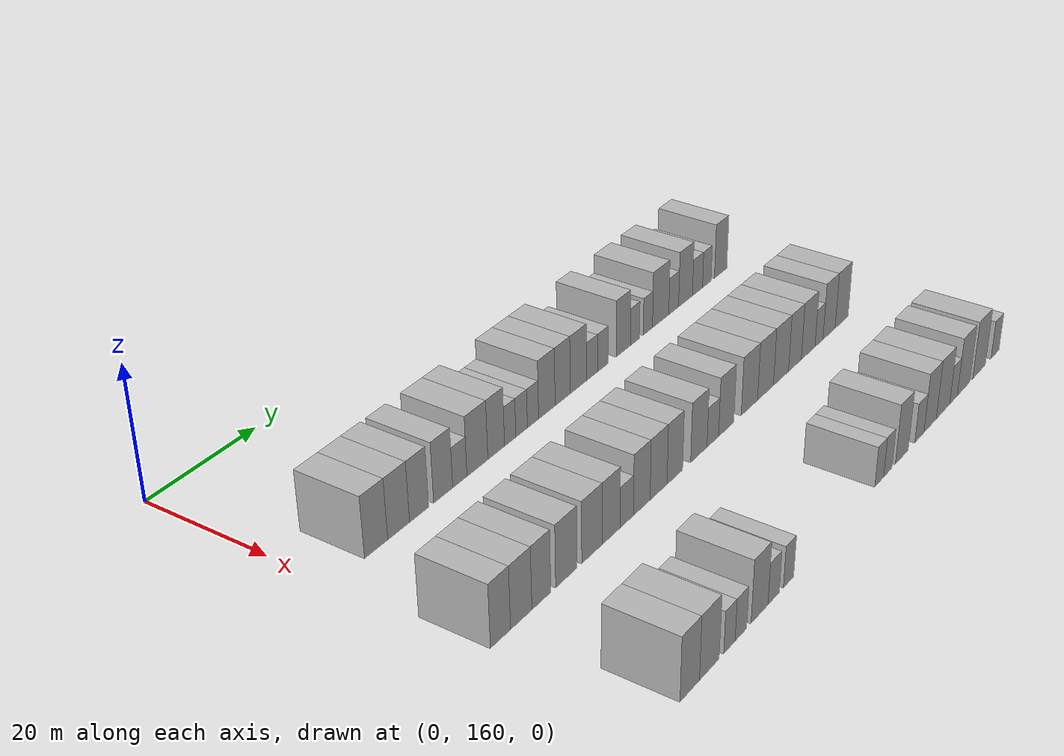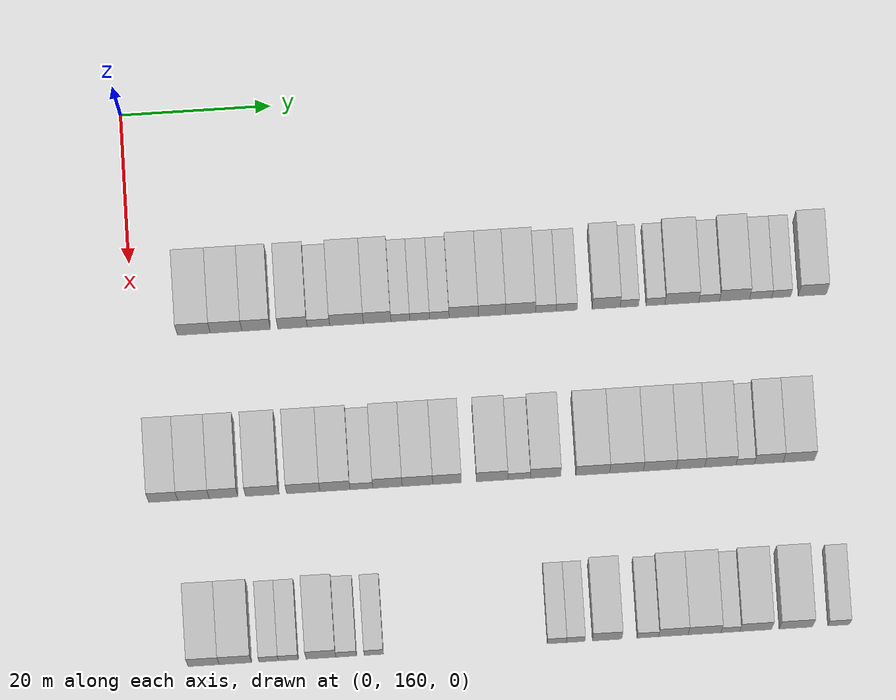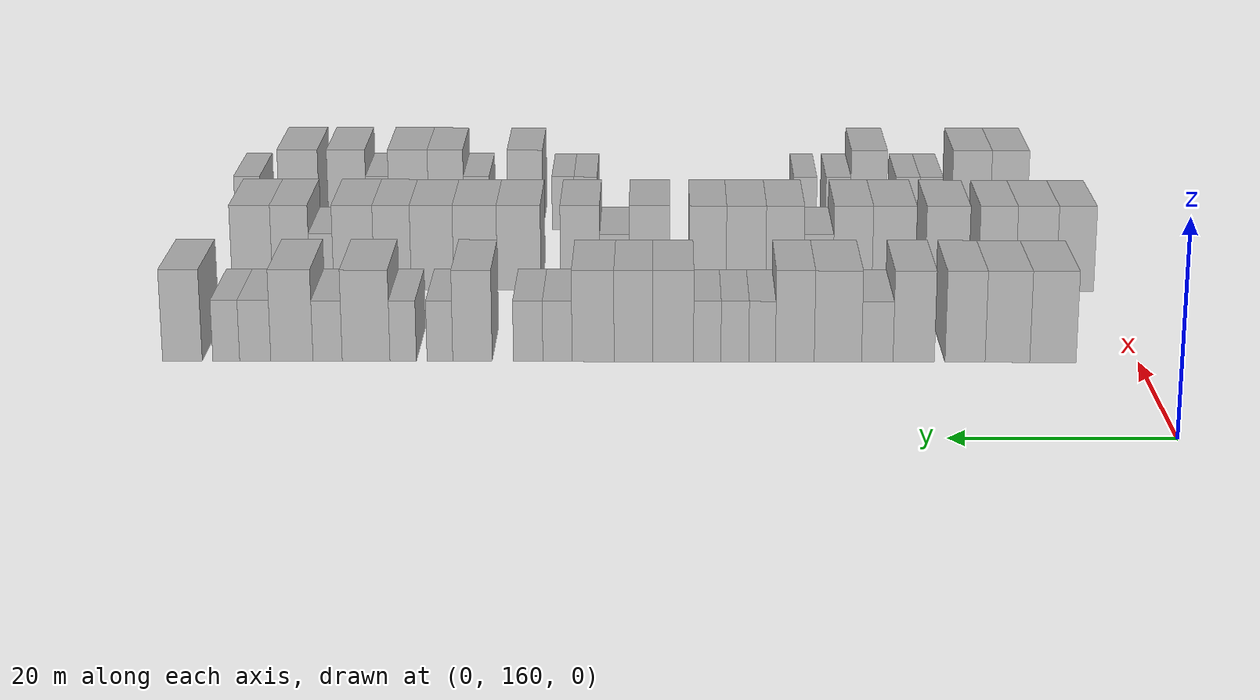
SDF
<sdf version="1.6">
 <world name="default">
  <model name="building_99">
   <static>1</static>
   <pose>25.0000 168.0399 0 0.000000 0.000000 0.000000</pose>
   <link name="link">
    <pose>0 0 4.50 0 0 0</pose>
    <collision name="collision"><geometry><box><size>10.0000 4.3559 9.0000</size></box></geometry></collision>
    <visual name="visual">
     <cast_shadows>0</cast_shadows>
     <geometry><box><size>10.0000 4.3559 9.0000</size></box></geometry>
     <material>
      <script>
       <uri>model://HANNAS_wall/materials/scripts</uri>
       <uri>model://HANNAS_wall/materials/textures</uri>
       <name>vrc/HANNAS_wall</name>
      </script>
     </material>
    </visual>
   </link>
  </model>
  <model name="building_100">
   <static>1</static>
   <pose>25.0000 172.3185 0 0.000000 0.000000 0.000000</pose>
   <link name="link">
    <pose>0 0 4.50 0 0 0</pose>
    <collision name="collision"><geometry><box><size>10.0000 4.2013 9.0000</size></box></geometry></collision>
    <visual name="visual">
     <cast_shadows>0</cast_shadows>
     <geometry><box><size>10.0000 4.2013 9.0000</size></box></geometry>
     <material>
      <script>
       <uri>model://HANNAS_wall/materials/scripts</uri>
       <uri>model://HANNAS_wall/materials/textures</uri>
       <name>vrc/HANNAS_wall</name>
      </script>
     </material>
    </visual>
   </link>
  </model>
  <model name="building_101">
   <static>1</static>
   <pose>25.0000 176.3024 0 0.000000 0.000000 0.000000</pose>
   <link name="link">
    <pose>0 0 4.50 0 0 0</pose>
    <collision name="collision"><geometry><box><size>10.0000 3.7665 9.0000</size></box></geometry></collision>
    <visual name="visual">
     <cast_shadows>0</cast_shadows>
     <geometry><box><size>10.0000 3.7665 9.0000</size></box></geometry>
     <material>
      <script>
       <uri>model://HANNAS_wall/materials/scripts</uri>
       <uri>model://HANNAS_wall/materials/textures</uri>
       <name>vrc/HANNAS_wall</name>
      </script>
     </material>
    </visual>
   </link>
  </model>
  <model name="building_102">
   <static>1</static>
   <pose>25.0000 181.1309 0 0.000000 0.000000 0.000000</pose>
   <link name="link">
    <pose>0 0 4.50 0 0 0</pose>
    <collision name="collision"><geometry><box><size>10.0000 3.8904 9.0000</size></box></geometry></collision>
    <visual name="visual">
     <cast_shadows>0</cast_shadows>
     <geometry><box><size>10.0000 3.8904 9.0000</size></box></geometry>
     <material>
      <script>
       <uri>model://HANNAS_wall/materials/scripts</uri>
       <uri>model://HANNAS_wall/materials/textures</uri>
       <name>vrc/HANNAS_wall</name>
      </script>
     </material>
    </visual>
   </link>
  </model>
  <model name="building_103">
   <static>1</static>
   <pose>25.0000 184.5589 0 0.000000 0.000000 0.000000</pose>
   <link name="link">
    <pose>0 0 3.00 0 0 0</pose>
    <collision name="collision"><geometry><box><size>10.0000 2.9656 6.0000</size></box></geometry></collision>
    <visual name="visual">
     <cast_shadows>0</cast_shadows>
     <geometry><box><size>10.0000 2.9656 6.0000</size></box></geometry>
     <material>
      <script>
       <uri>model://HANNAS_wall/materials/scripts</uri>
       <uri>model://HANNAS_wall/materials/textures</uri>
       <name>vrc/HANNAS_wall</name>
      </script>
     </material>
    </visual>
   </link>
  </model>
  <model name="building_104">
   <static>1</static>
   <pose>25.0000 188.2683 0 0.000000 0.000000 0.000000</pose>
   <link name="link">
    <pose>0 0 4.50 0 0 0</pose>
    <collision name="collision"><geometry><box><size>10.0000 4.4532 9.0000</size></box></geometry></collision>
    <visual name="visual">
     <cast_shadows>0</cast_shadows>
     <geometry><box><size>10.0000 4.4532 9.0000</size></box></geometry>
     <material>
      <script>
       <uri>model://HANNAS_wall/materials/scripts</uri>
       <uri>model://HANNAS_wall/materials/textures</uri>
       <name>vrc/HANNAS_wall</name>
      </script>
     </material>
    </visual>
   </link>
  </model>
  <model name="building_105">
   <static>1</static>
   <pose>25.0000 192.3219 0 0.000000 0.000000 0.000000</pose>
   <link name="link">
    <pose>0 0 4.50 0 0 0</pose>
    <collision name="collision"><geometry><box><size>10.0000 3.6541 9.0000</size></box></geometry></collision>
    <visual name="visual">
     <cast_shadows>0</cast_shadows>
     <geometry><box><size>10.0000 3.6541 9.0000</size></box></geometry>
     <material>
      <script>
       <uri>model://HANNAS_wall/materials/scripts</uri>
       <uri>model://HANNAS_wall/materials/textures</uri>
       <name>vrc/HANNAS_wall</name>
      </script>
     </material>
    </visual>
   </link>
  </model>
  <model name="building_106">
   <static>1</static>
   <pose>25.0000 195.3987 0 0.000000 0.000000 0.000000</pose>
   <link name="link">
    <pose>0 0 3.00 0 0 0</pose>
    <collision name="collision"><geometry><box><size>10.0000 2.4995 6.0000</size></box></geometry></collision>
    <visual name="visual">
     <cast_shadows>0</cast_shadows>
     <geometry><box><size>10.0000 2.4995 6.0000</size></box></geometry>
     <material>
      <script>
       <uri>model://HANNAS_wall/materials/scripts</uri>
       <uri>model://HANNAS_wall/materials/textures</uri>
       <name>vrc/HANNAS_wall</name>
      </script>
     </material>
    </visual>
   </link>
  </model>
  <model name="building_107">
   <static>1</static>
   <pose>25.0000 197.9609 0 0.000000 0.000000 0.000000</pose>
   <link name="link">
    <pose>0 0 3.00 0 0 0</pose>
    <collision name="collision"><geometry><box><size>10.0000 2.6248 6.0000</size></box></geometry></collision>
    <visual name="visual">
     <cast_shadows>0</cast_shadows>
     <geometry><box><size>10.0000 2.6248 6.0000</size></box></geometry>
     <material>
      <script>
       <uri>model://HANNAS_wall/materials/scripts</uri>
       <uri>model://HANNAS_wall/materials/textures</uri>
       <name>vrc/HANNAS_wall</name>
      </script>
     </material>
    </visual>
   </link>
  </model>
  <model name="building_108">
   <static>1</static>
   <pose>25.0000 200.5606 0 0.000000 0.000000 0.000000</pose>
   <link name="link">
    <pose>0 0 3.00 0 0 0</pose>
    <collision name="collision"><geometry><box><size>10.0000 2.5746 6.0000</size></box></geometry></collision>
    <visual name="visual">
     <cast_shadows>0</cast_shadows>
     <geometry><box><size>10.0000 2.5746 6.0000</size></box></geometry>
     <material>
      <script>
       <uri>model://HANNAS_wall/materials/scripts</uri>
       <uri>model://HANNAS_wall/materials/textures</uri>
       <name>vrc/HANNAS_wall</name>
      </script>
     </material>
    </visual>
   </link>
  </model>
  <model name="building_109">
   <static>1</static>
   <pose>25.0000 203.7790 0 0.000000 0.000000 0.000000</pose>
   <link name="link">
    <pose>0 0 4.50 0 0 0</pose>
    <collision name="collision"><geometry><box><size>10.0000 3.8621 9.0000</size></box></geometry></collision>
    <visual name="visual">
     <cast_shadows>0</cast_shadows>
     <geometry><box><size>10.0000 3.8621 9.0000</size></box></geometry>
     <material>
      <script>
       <uri>model://HANNAS_wall/materials/scripts</uri>
       <uri>model://HANNAS_wall/materials/textures</uri>
       <name>vrc/HANNAS_wall</name>
      </script>
     </material>
    </visual>
   </link>
  </model>
  <model name="building_110">
   <static>1</static>
   <pose>25.0000 207.5208 0 0.000000 0.000000 0.000000</pose>
   <link name="link">
    <pose>0 0 4.50 0 0 0</pose>
    <collision name="collision"><geometry><box><size>10.0000 3.6215 9.0000</size></box></geometry></collision>
    <visual name="visual">
     <cast_shadows>0</cast_shadows>
     <geometry><box><size>10.0000 3.6215 9.0000</size></box></geometry>
     <material>
      <script>
       <uri>model://HANNAS_wall/materials/scripts</uri>
       <uri>model://HANNAS_wall/materials/textures</uri>
       <name>vrc/HANNAS_wall</name>
      </script>
     </material>
    </visual>
   </link>
  </model>
  <model name="building_111">
   <static>1</static>
   <pose>25.0000 211.3105 0 0.000000 0.000000 0.000000</pose>
   <link name="link">
    <pose>0 0 4.50 0 0 0</pose>
    <collision name="collision"><geometry><box><size>10.0000 3.9579 9.0000</size></box></geometry></collision>
    <visual name="visual">
     <cast_shadows>0</cast_shadows>
     <geometry><box><size>10.0000 3.9579 9.0000</size></box></geometry>
     <material>
      <script>
       <uri>model://HANNAS_wall/materials/scripts</uri>
       <uri>model://HANNAS_wall/materials/textures</uri>
       <name>vrc/HANNAS_wall</name>
      </script>
     </material>
    </visual>
   </link>
  </model>
  <model name="building_112">
   <static>1</static>
   <pose>25.0000 214.6621 0 0.000000 0.000000 0.000000</pose>
   <link name="link">
    <pose>0 0 3.00 0 0 0</pose>
    <collision name="collision"><geometry><box><size>10.0000 2.7454 6.0000</size></box></geometry></collision>
    <visual name="visual">
     <cast_shadows>0</cast_shadows>
     <geometry><box><size>10.0000 2.7454 6.0000</size></box></geometry>
     <material>
      <script>
       <uri>model://HANNAS_wall/materials/scripts</uri>
       <uri>model://HANNAS_wall/materials/textures</uri>
       <name>vrc/HANNAS_wall</name>
      </script>
     </material>
    </visual>
   </link>
  </model>
  <model name="building_113">
   <static>1</static>
   <pose>25.0000 217.4210 0 0.000000 0.000000 0.000000</pose>
   <link name="link">
    <pose>0 0 3.00 0 0 0</pose>
    <collision name="collision"><geometry><box><size>10.0000 2.7723 6.0000</size></box></geometry></collision>
    <visual name="visual">
     <cast_shadows>0</cast_shadows>
     <geometry><box><size>10.0000 2.7723 6.0000</size></box></geometry>
     <material>
      <script>
       <uri>model://HANNAS_wall/materials/scripts</uri>
       <uri>model://HANNAS_wall/materials/textures</uri>
       <name>vrc/HANNAS_wall</name>
      </script>
     </material>
    </visual>
   </link>
  </model>
  <model name="building_114">
   <static>1</static>
   <pose>25.0000 222.6649 0 0.000000 0.000000 0.000000</pose>
   <link name="link">
    <pose>0 0 4.50 0 0 0</pose>
    <collision name="collision"><geometry><box><size>10.0000 3.7156 9.0000</size></box></geometry></collision>
    <visual name="visual">
     <cast_shadows>0</cast_shadows>
     <geometry><box><size>10.0000 3.7156 9.0000</size></box></geometry>
     <material>
      <script>
       <uri>model://HANNAS_wall/materials/scripts</uri>
       <uri>model://HANNAS_wall/materials/textures</uri>
       <name>vrc/HANNAS_wall</name>
      </script>
     </material>
    </visual>
   </link>
  </model>
  <model name="building_115">
   <static>1</static>
   <pose>25.0000 225.7364 0 0.000000 0.000000 0.000000</pose>
   <link name="link">
    <pose>0 0 3.00 0 0 0</pose>
    <collision name="collision"><geometry><box><size>10.0000 2.4274 6.0000</size></box></geometry></collision>
    <visual name="visual">
     <cast_shadows>0</cast_shadows>
     <geometry><box><size>10.0000 2.4274 6.0000</size></box></geometry>
     <material>
      <script>
       <uri>model://HANNAS_wall/materials/scripts</uri>
       <uri>model://HANNAS_wall/materials/textures</uri>
       <name>vrc/HANNAS_wall</name>
      </script>
     </material>
    </visual>
   </link>
  </model>
  <model name="building_116">
   <static>1</static>
   <pose>25.0000 229.1979 0 0.000000 0.000000 0.000000</pose>
   <link name="link">
    <pose>0 0 3.00 0 0 0</pose>
    <collision name="collision"><geometry><box><size>10.0000 2.4956 6.0000</size></box></geometry></collision>
    <visual name="visual">
     <cast_shadows>0</cast_shadows>
     <geometry><box><size>10.0000 2.4956 6.0000</size></box></geometry>
     <material>
      <script>
       <uri>model://HANNAS_wall/materials/scripts</uri>
       <uri>model://HANNAS_wall/materials/textures</uri>
       <name>vrc/HANNAS_wall</name>
      </script>
     </material>
    </visual>
   </link>
  </model>
  <model name="building_117">
   <static>1</static>
   <pose>25.0000 232.6946 0 0.000000 0.000000 0.000000</pose>
   <link name="link">
    <pose>0 0 4.50 0 0 0</pose>
    <collision name="collision"><geometry><box><size>10.0000 4.4978 9.0000</size></box></geometry></collision>
    <visual name="visual">
     <cast_shadows>0</cast_shadows>
     <geometry><box><size>10.0000 4.4978 9.0000</size></box></geometry>
     <material>
      <script>
       <uri>model://HANNAS_wall/materials/scripts</uri>
       <uri>model://HANNAS_wall/materials/textures</uri>
       <name>vrc/HANNAS_wall</name>
      </script>
     </material>
    </visual>
   </link>
  </model>
  <model name="building_118">
   <static>1</static>
   <pose>25.0000 236.3206 0 0.000000 0.000000 0.000000</pose>
   <link name="link">
    <pose>0 0 3.00 0 0 0</pose>
    <collision name="collision"><geometry><box><size>10.0000 2.7542 6.0000</size></box></geometry></collision>
    <visual name="visual">
     <cast_shadows>0</cast_shadows>
     <geometry><box><size>10.0000 2.7542 6.0000</size></box></geometry>
     <material>
      <script>
       <uri>model://HANNAS_wall/materials/scripts</uri>
       <uri>model://HANNAS_wall/materials/textures</uri>
       <name>vrc/HANNAS_wall</name>
      </script>
     </material>
    </visual>
   </link>
  </model>
  <model name="building_119">
   <static>1</static>
   <pose>25.0000 239.6859 0 0.000000 0.000000 0.000000</pose>
   <link name="link">
    <pose>0 0 4.50 0 0 0</pose>
    <collision name="collision"><geometry><box><size>10.0000 3.9764 9.0000</size></box></geometry></collision>
    <visual name="visual">
     <cast_shadows>0</cast_shadows>
     <geometry><box><size>10.0000 3.9764 9.0000</size></box></geometry>
     <material>
      <script>
       <uri>model://HANNAS_wall/materials/scripts</uri>
       <uri>model://HANNAS_wall/materials/textures</uri>
       <name>vrc/HANNAS_wall</name>
      </script>
     </material>
    </visual>
   </link>
  </model>
  <model name="building_120">
   <static>1</static>
   <pose>25.0000 243.1454 0 0.000000 0.000000 0.000000</pose>
   <link name="link">
    <pose>0 0 3.00 0 0 0</pose>
    <collision name="collision"><geometry><box><size>10.0000 2.9426 6.0000</size></box></geometry></collision>
    <visual name="visual">
     <cast_shadows>0</cast_shadows>
     <geometry><box><size>10.0000 2.9426 6.0000</size></box></geometry>
     <material>
      <script>
       <uri>model://HANNAS_wall/materials/scripts</uri>
       <uri>model://HANNAS_wall/materials/textures</uri>
       <name>vrc/HANNAS_wall</name>
      </script>
     </material>
    </visual>
   </link>
  </model>
  <model name="building_121">
   <static>1</static>
   <pose>25.0000 245.8794 0 0.000000 0.000000 0.000000</pose>
   <link name="link">
    <pose>0 0 3.00 0 0 0</pose>
    <collision name="collision"><geometry><box><size>10.0000 2.5252 6.0000</size></box></geometry></collision>
    <visual name="visual">
     <cast_shadows>0</cast_shadows>
     <geometry><box><size>10.0000 2.5252 6.0000</size></box></geometry>
     <material>
      <script>
       <uri>model://HANNAS_wall/materials/scripts</uri>
       <uri>model://HANNAS_wall/materials/textures</uri>
       <name>vrc/HANNAS_wall</name>
      </script>
     </material>
    </visual>
   </link>
  </model>
  <model name="building_122">
   <static>1</static>
   <pose>25.0000 250.0125 0 0.000000 0.000000 0.000000</pose>
   <link name="link">
    <pose>0 0 4.50 0 0 0</pose>
    <collision name="collision"><geometry><box><size>10.0000 3.7411 9.0000</size></box></geometry></collision>
    <visual name="visual">
     <cast_shadows>0</cast_shadows>
     <geometry><box><size>10.0000 3.7411 9.0000</size></box></geometry>
     <material>
      <script>
       <uri>model://HANNAS_wall/materials/scripts</uri>
       <uri>model://HANNAS_wall/materials/textures</uri>
       <name>vrc/HANNAS_wall</name>
      </script>
     </material>
    </visual>
   </link>
  </model>
  <model name="building_234">
   <static>1</static>
   <pose>47.0000 162.7583 0 0.000000 0.000000 0.000000</pose>
   <link name="link">
    <pose>0 0 4.50 0 0 0</pose>
    <collision name="collision"><geometry><box><size>10.0000 3.8305 9.0000</size></box></geometry></collision>
    <visual name="visual">
     <cast_shadows>0</cast_shadows>
     <geometry><box><size>10.0000 3.8305 9.0000</size></box></geometry>
     <material>
      <script>
       <uri>model://HANNAS_wall/materials/scripts</uri>
       <uri>model://HANNAS_wall/materials/textures</uri>
       <name>vrc/HANNAS_wall</name>
      </script>
     </material>
    </visual>
   </link>
  </model>
  <model name="building_235">
   <static>1</static>
   <pose>47.0000 166.7505 0 0.000000 0.000000 0.000000</pose>
   <link name="link">
    <pose>0 0 4.50 0 0 0</pose>
    <collision name="collision"><geometry><box><size>10.0000 4.1537 9.0000</size></box></geometry></collision>
    <visual name="visual">
     <cast_shadows>0</cast_shadows>
     <geometry><box><size>10.0000 4.1537 9.0000</size></box></geometry>
     <material>
      <script>
       <uri>model://HANNAS_wall/materials/scripts</uri>
       <uri>model://HANNAS_wall/materials/textures</uri>
       <name>vrc/HANNAS_wall</name>
      </script>
     </material>
    </visual>
   </link>
  </model>
  <model name="building_236">
   <static>1</static>
   <pose>47.0000 170.7212 0 0.000000 0.000000 0.000000</pose>
   <link name="link">
    <pose>0 0 4.50 0 0 0</pose>
    <collision name="collision"><geometry><box><size>10.0000 3.7877 9.0000</size></box></geometry></collision>
    <visual name="visual">
     <cast_shadows>0</cast_shadows>
     <geometry><box><size>10.0000 3.7877 9.0000</size></box></geometry>
     <material>
      <script>
       <uri>model://HANNAS_wall/materials/scripts</uri>
       <uri>model://HANNAS_wall/materials/textures</uri>
       <name>vrc/HANNAS_wall</name>
      </script>
     </material>
    </visual>
   </link>
  </model>
  <model name="building_237">
   <static>1</static>
   <pose>47.0000 175.8314 0 0.000000 0.000000 0.000000</pose>
   <link name="link">
    <pose>0 0 4.50 0 0 0</pose>
    <collision name="collision"><geometry><box><size>10.0000 4.4326 9.0000</size></box></geometry></collision>
    <visual name="visual">
     <cast_shadows>0</cast_shadows>
     <geometry><box><size>10.0000 4.4326 9.0000</size></box></geometry>
     <material>
      <script>
       <uri>model://HANNAS_wall/materials/scripts</uri>
       <uri>model://HANNAS_wall/materials/textures</uri>
       <name>vrc/HANNAS_wall</name>
      </script>
     </material>
    </visual>
   </link>
  </model>
  <model name="building_238">
   <static>1</static>
   <pose>47.0000 181.2470 0 0.000000 0.000000 0.000000</pose>
   <link name="link">
    <pose>0 0 4.50 0 0 0</pose>
    <collision name="collision"><geometry><box><size>10.0000 4.3987 9.0000</size></box></geometry></collision>
    <visual name="visual">
     <cast_shadows>0</cast_shadows>
     <geometry><box><size>10.0000 4.3987 9.0000</size></box></geometry>
     <material>
      <script>
       <uri>model://HANNAS_wall/materials/scripts</uri>
       <uri>model://HANNAS_wall/materials/textures</uri>
       <name>vrc/HANNAS_wall</name>
      </script>
     </material>
    </visual>
   </link>
  </model>
  <model name="building_239">
   <static>1</static>
   <pose>47.0000 185.4300 0 0.000000 0.000000 0.000000</pose>
   <link name="link">
    <pose>0 0 4.50 0 0 0</pose>
    <collision name="collision"><geometry><box><size>10.0000 3.9673 9.0000</size></box></geometry></collision>
    <visual name="visual">
     <cast_shadows>0</cast_shadows>
     <geometry><box><size>10.0000 3.9673 9.0000</size></box></geometry>
     <material>
      <script>
       <uri>model://HANNAS_wall/materials/scripts</uri>
       <uri>model://HANNAS_wall/materials/textures</uri>
       <name>vrc/HANNAS_wall</name>
      </script>
     </material>
    </visual>
   </link>
  </model>
  <model name="building_240">
   <static>1</static>
   <pose>47.0000 188.9118 0 0.000000 0.000000 0.000000</pose>
   <link name="link">
    <pose>0 0 3.00 0 0 0</pose>
    <collision name="collision"><geometry><box><size>10.0000 2.9962 6.0000</size></box></geometry></collision>
    <visual name="visual">
     <cast_shadows>0</cast_shadows>
     <geometry><box><size>10.0000 2.9962 6.0000</size></box></geometry>
     <material>
      <script>
       <uri>model://HANNAS_wall/materials/scripts</uri>
       <uri>model://HANNAS_wall/materials/textures</uri>
       <name>vrc/HANNAS_wall</name>
      </script>
     </material>
    </visual>
   </link>
  </model>
  <model name="building_241">
   <static>1</static>
   <pose>47.0000 192.3443 0 0.000000 0.000000 0.000000</pose>
   <link name="link">
    <pose>0 0 4.50 0 0 0</pose>
    <collision name="collision"><geometry><box><size>10.0000 3.8688 9.0000</size></box></geometry></collision>
    <visual name="visual">
     <cast_shadows>0</cast_shadows>
     <geometry><box><size>10.0000 3.8688 9.0000</size></box></geometry>
     <material>
      <script>
       <uri>model://HANNAS_wall/materials/scripts</uri>
       <uri>model://HANNAS_wall/materials/textures</uri>
       <name>vrc/HANNAS_wall</name>
      </script>
     </material>
    </visual>
   </link>
  </model>
  <model name="building_242">
   <static>1</static>
   <pose>47.0000 196.2928 0 0.000000 0.000000 0.000000</pose>
   <link name="link">
    <pose>0 0 4.50 0 0 0</pose>
    <collision name="collision"><geometry><box><size>10.0000 4.0281 9.0000</size></box></geometry></collision>
    <visual name="visual">
     <cast_shadows>0</cast_shadows>
     <geometry><box><size>10.0000 4.0281 9.0000</size></box></geometry>
     <material>
      <script>
       <uri>model://HANNAS_wall/materials/scripts</uri>
       <uri>model://HANNAS_wall/materials/textures</uri>
       <name>vrc/HANNAS_wall</name>
      </script>
     </material>
    </visual>
   </link>
  </model>
  <model name="building_243">
   <static>1</static>
   <pose>47.0000 200.1939 0 0.000000 0.000000 0.000000</pose>
   <link name="link">
    <pose>0 0 4.50 0 0 0</pose>
    <collision name="collision"><geometry><box><size>10.0000 3.7741 9.0000</size></box></geometry></collision>
    <visual name="visual">
     <cast_shadows>0</cast_shadows>
     <geometry><box><size>10.0000 3.7741 9.0000</size></box></geometry>
     <material>
      <script>
       <uri>model://HANNAS_wall/materials/scripts</uri>
       <uri>model://HANNAS_wall/materials/textures</uri>
       <name>vrc/HANNAS_wall</name>
      </script>
     </material>
    </visual>
   </link>
  </model>
  <model name="building_244">
   <static>1</static>
   <pose>47.0000 206.1408 0 0.000000 0.000000 0.000000</pose>
   <link name="link">
    <pose>0 0 4.50 0 0 0</pose>
    <collision name="collision"><geometry><box><size>10.0000 4.1198 9.0000</size></box></geometry></collision>
    <visual name="visual">
     <cast_shadows>0</cast_shadows>
     <geometry><box><size>10.0000 4.1198 9.0000</size></box></geometry>
     <material>
      <script>
       <uri>model://HANNAS_wall/materials/scripts</uri>
       <uri>model://HANNAS_wall/materials/textures</uri>
       <name>vrc/HANNAS_wall</name>
      </script>
     </material>
    </visual>
   </link>
  </model>
  <model name="building_245">
   <static>1</static>
   <pose>47.0000 209.6936 0 0.000000 0.000000 0.000000</pose>
   <link name="link">
    <pose>0 0 3.00 0 0 0</pose>
    <collision name="collision"><geometry><box><size>10.0000 2.9857 6.0000</size></box></geometry></collision>
    <visual name="visual">
     <cast_shadows>0</cast_shadows>
     <geometry><box><size>10.0000 2.9857 6.0000</size></box></geometry>
     <material>
      <script>
       <uri>model://HANNAS_wall/materials/scripts</uri>
       <uri>model://HANNAS_wall/materials/textures</uri>
       <name>vrc/HANNAS_wall</name>
      </script>
     </material>
    </visual>
   </link>
  </model>
  <model name="building_246">
   <static>1</static>
   <pose>47.0000 213.1896 0 0.000000 0.000000 0.000000</pose>
   <link name="link">
    <pose>0 0 4.50 0 0 0</pose>
    <collision name="collision"><geometry><box><size>10.0000 4.0063 9.0000</size></box></geometry></collision>
    <visual name="visual">
     <cast_shadows>0</cast_shadows>
     <geometry><box><size>10.0000 4.0063 9.0000</size></box></geometry>
     <material>
      <script>
       <uri>model://HANNAS_wall/materials/scripts</uri>
       <uri>model://HANNAS_wall/materials/textures</uri>
       <name>vrc/HANNAS_wall</name>
      </script>
     </material>
    </visual>
   </link>
  </model>
  <model name="building_247">
   <static>1</static>
   <pose>47.0000 219.4216 0 0.000000 0.000000 0.000000</pose>
   <link name="link">
    <pose>0 0 4.50 0 0 0</pose>
    <collision name="collision"><geometry><box><size>10.0000 4.4577 9.0000</size></box></geometry></collision>
    <visual name="visual">
     <cast_shadows>0</cast_shadows>
     <geometry><box><size>10.0000 4.4577 9.0000</size></box></geometry>
     <material>
      <script>
       <uri>model://HANNAS_wall/materials/scripts</uri>
       <uri>model://HANNAS_wall/materials/textures</uri>
       <name>vrc/HANNAS_wall</name>
      </script>
     </material>
    </visual>
   </link>
  </model>
  <model name="building_248">
   <static>1</static>
   <pose>47.0000 223.8781 0 0.000000 0.000000 0.000000</pose>
   <link name="link">
    <pose>0 0 4.50 0 0 0</pose>
    <collision name="collision"><geometry><box><size>10.0000 4.4552 9.0000</size></box></geometry></collision>
    <visual name="visual">
     <cast_shadows>0</cast_shadows>
     <geometry><box><size>10.0000 4.4552 9.0000</size></box></geometry>
     <material>
      <script>
       <uri>model://HANNAS_wall/materials/scripts</uri>
       <uri>model://HANNAS_wall/materials/textures</uri>
       <name>vrc/HANNAS_wall</name>
      </script>
     </material>
    </visual>
   </link>
  </model>
  <model name="building_249">
   <static>1</static>
   <pose>47.0000 228.2717 0 0.000000 0.000000 0.000000</pose>
   <link name="link">
    <pose>0 0 4.50 0 0 0</pose>
    <collision name="collision"><geometry><box><size>10.0000 4.3322 9.0000</size></box></geometry></collision>
    <visual name="visual">
     <cast_shadows>0</cast_shadows>
     <geometry><box><size>10.0000 4.3322 9.0000</size></box></geometry>
     <material>
      <script>
       <uri>model://HANNAS_wall/materials/scripts</uri>
       <uri>model://HANNAS_wall/materials/textures</uri>
       <name>vrc/HANNAS_wall</name>
      </script>
     </material>
    </visual>
   </link>
  </model>
  <model name="building_250">
   <static>1</static>
   <pose>47.0000 232.3275 0 0.000000 0.000000 0.000000</pose>
   <link name="link">
    <pose>0 0 4.50 0 0 0</pose>
    <collision name="collision"><geometry><box><size>10.0000 3.7793 9.0000</size></box></geometry></collision>
    <visual name="visual">
     <cast_shadows>0</cast_shadows>
     <geometry><box><size>10.0000 3.7793 9.0000</size></box></geometry>
     <material>
      <script>
       <uri>model://HANNAS_wall/materials/scripts</uri>
       <uri>model://HANNAS_wall/materials/textures</uri>
       <name>vrc/HANNAS_wall</name>
      </script>
     </material>
    </visual>
   </link>
  </model>
  <model name="building_251">
   <static>1</static>
   <pose>47.0000 236.2859 0 0.000000 0.000000 0.000000</pose>
   <link name="link">
    <pose>0 0 4.50 0 0 0</pose>
    <collision name="collision"><geometry><box><size>10.0000 4.1376 9.0000</size></box></geometry></collision>
    <visual name="visual">
     <cast_shadows>0</cast_shadows>
     <geometry><box><size>10.0000 4.1376 9.0000</size></box></geometry>
     <material>
      <script>
       <uri>model://HANNAS_wall/materials/scripts</uri>
       <uri>model://HANNAS_wall/materials/textures</uri>
       <name>vrc/HANNAS_wall</name>
      </script>
     </material>
    </visual>
   </link>
  </model>
  <model name="building_252">
   <static>1</static>
   <pose>47.0000 239.5679 0 0.000000 0.000000 0.000000</pose>
   <link name="link">
    <pose>0 0 3.00 0 0 0</pose>
    <collision name="collision"><geometry><box><size>10.0000 2.4264 6.0000</size></box></geometry></collision>
    <visual name="visual">
     <cast_shadows>0</cast_shadows>
     <geometry><box><size>10.0000 2.4264 6.0000</size></box></geometry>
     <material>
      <script>
       <uri>model://HANNAS_wall/materials/scripts</uri>
       <uri>model://HANNAS_wall/materials/textures</uri>
       <name>vrc/HANNAS_wall</name>
      </script>
     </material>
    </visual>
   </link>
  </model>
  <model name="building_253">
   <static>1</static>
   <pose>47.0000 242.6857 0 0.000000 0.000000 0.000000</pose>
   <link name="link">
    <pose>0 0 4.50 0 0 0</pose>
    <collision name="collision"><geometry><box><size>10.0000 3.8091 9.0000</size></box></geometry></collision>
    <visual name="visual">
     <cast_shadows>0</cast_shadows>
     <geometry><box><size>10.0000 3.8091 9.0000</size></box></geometry>
     <material>
      <script>
       <uri>model://HANNAS_wall/materials/scripts</uri>
       <uri>model://HANNAS_wall/materials/textures</uri>
       <name>vrc/HANNAS_wall</name>
      </script>
     </material>
    </visual>
   </link>
  </model>
  <model name="building_254">
   <static>1</static>
   <pose>47.0000 246.6524 0 0.000000 0.000000 0.000000</pose>
   <link name="link">
    <pose>0 0 4.50 0 0 0</pose>
    <collision name="collision"><geometry><box><size>10.0000 4.1243 9.0000</size></box></geometry></collision>
    <visual name="visual">
     <cast_shadows>0</cast_shadows>
     <geometry><box><size>10.0000 4.1243 9.0000</size></box></geometry>
     <material>
      <script>
       <uri>model://HANNAS_wall/materials/scripts</uri>
       <uri>model://HANNAS_wall/materials/textures</uri>
       <name>vrc/HANNAS_wall</name>
      </script>
     </material>
    </visual>
   </link>
  </model>
  <model name="building_360">
   <static>1</static>
   <pose>69.0000 166.8351 0 0.000000 0.000000 0.000000</pose>
   <link name="link">
    <pose>0 0 4.50 0 0 0</pose>
    <collision name="collision"><geometry><box><size>10.0000 4.0739 9.0000</size></box></geometry></collision>
    <visual name="visual">
     <cast_shadows>0</cast_shadows>
     <geometry><box><size>10.0000 4.0739 9.0000</size></box></geometry>
     <material>
      <script>
       <uri>model://HANNAS_wall/materials/scripts</uri>
       <uri>model://HANNAS_wall/materials/textures</uri>
       <name>vrc/HANNAS_wall</name>
      </script>
     </material>
    </visual>
   </link>
  </model>
  <model name="building_361">
   <static>1</static>
   <pose>69.0000 170.9937 0 0.000000 0.000000 0.000000</pose>
   <link name="link">
    <pose>0 0 4.50 0 0 0</pose>
    <collision name="collision"><geometry><box><size>10.0000 4.2434 9.0000</size></box></geometry></collision>
    <visual name="visual">
     <cast_shadows>0</cast_shadows>
     <geometry><box><size>10.0000 4.2434 9.0000</size></box></geometry>
     <material>
      <script>
       <uri>model://HANNAS_wall/materials/scripts</uri>
       <uri>model://HANNAS_wall/materials/textures</uri>
       <name>vrc/HANNAS_wall</name>
      </script>
     </material>
    </visual>
   </link>
  </model>
  <model name="building_362">
   <static>1</static>
   <pose>69.0000 175.3858 0 0.000000 0.000000 0.000000</pose>
   <link name="link">
    <pose>0 0 3.00 0 0 0</pose>
    <collision name="collision"><geometry><box><size>10.0000 2.5409 6.0000</size></box></geometry></collision>
    <visual name="visual">
     <cast_shadows>0</cast_shadows>
     <geometry><box><size>10.0000 2.5409 6.0000</size></box></geometry>
     <material>
      <script>
       <uri>model://HANNAS_wall/materials/scripts</uri>
       <uri>model://HANNAS_wall/materials/textures</uri>
       <name>vrc/HANNAS_wall</name>
      </script>
     </material>
    </visual>
   </link>
  </model>
  <model name="building_363">
   <static>1</static>
   <pose>69.0000 177.9692 0 0.000000 0.000000 0.000000</pose>
   <link name="link">
    <pose>0 0 3.00 0 0 0</pose>
    <collision name="collision"><geometry><box><size>10.0000 2.6259 6.0000</size></box></geometry></collision>
    <visual name="visual">
     <cast_shadows>0</cast_shadows>
     <geometry><box><size>10.0000 2.6259 6.0000</size></box></geometry>
     <material>
      <script>
       <uri>model://HANNAS_wall/materials/scripts</uri>
       <uri>model://HANNAS_wall/materials/textures</uri>
       <name>vrc/HANNAS_wall</name>
      </script>
     </material>
    </visual>
   </link>
  </model>
  <model name="building_364">
   <static>1</static>
   <pose>69.0000 182.2483 0 0.000000 0.000000 0.000000</pose>
   <link name="link">
    <pose>0 0 4.50 0 0 0</pose>
    <collision name="collision"><geometry><box><size>10.0000 3.9323 9.0000</size></box></geometry></collision>
    <visual name="visual">
     <cast_shadows>0</cast_shadows>
     <geometry><box><size>10.0000 3.9323 9.0000</size></box></geometry>
     <material>
      <script>
       <uri>model://HANNAS_wall/materials/scripts</uri>
       <uri>model://HANNAS_wall/materials/textures</uri>
       <name>vrc/HANNAS_wall</name>
      </script>
     </material>
    </visual>
   </link>
  </model>
  <model name="building_365">
   <static>1</static>
   <pose>69.0000 185.5717 0 0.000000 0.000000 0.000000</pose>
   <link name="link">
    <pose>0 0 3.00 0 0 0</pose>
    <collision name="collision"><geometry><box><size>10.0000 2.7146 6.0000</size></box></geometry></collision>
    <visual name="visual">
     <cast_shadows>0</cast_shadows>
     <geometry><box><size>10.0000 2.7146 6.0000</size></box></geometry>
     <material>
      <script>
       <uri>model://HANNAS_wall/materials/scripts</uri>
       <uri>model://HANNAS_wall/materials/textures</uri>
       <name>vrc/HANNAS_wall</name>
      </script>
     </material>
    </visual>
   </link>
  </model>
  <model name="building_366">
   <static>1</static>
   <pose>69.0000 189.1954 0 0.000000 0.000000 0.000000</pose>
   <link name="link">
    <pose>0 0 3.00 0 0 0</pose>
    <collision name="collision"><geometry><box><size>10.0000 2.5327 6.0000</size></box></geometry></collision>
    <visual name="visual">
     <cast_shadows>0</cast_shadows>
     <geometry><box><size>10.0000 2.5327 6.0000</size></box></geometry>
     <material>
      <script>
       <uri>model://HANNAS_wall/materials/scripts</uri>
       <uri>model://HANNAS_wall/materials/textures</uri>
       <name>vrc/HANNAS_wall</name>
      </script>
     </material>
    </visual>
   </link>
  </model>
  <model name="building_367">
   <static>1</static>
   <pose>69.0000 213.2527 0 0.000000 0.000000 0.000000</pose>
   <link name="link">
    <pose>0 0 3.00 0 0 0</pose>
    <collision name="collision"><geometry><box><size>10.0000 2.5273 6.0000</size></box></geometry></collision>
    <visual name="visual">
     <cast_shadows>0</cast_shadows>
     <geometry><box><size>10.0000 2.5273 6.0000</size></box></geometry>
     <material>
      <script>
       <uri>model://HANNAS_wall/materials/scripts</uri>
       <uri>model://HANNAS_wall/materials/textures</uri>
       <name>vrc/HANNAS_wall</name>
      </script>
     </material>
    </visual>
   </link>
  </model>
  <model name="building_368">
   <static>1</static>
   <pose>69.0000 215.7277 0 0.000000 0.000000 0.000000</pose>
   <link name="link">
    <pose>0 0 3.00 0 0 0</pose>
    <collision name="collision"><geometry><box><size>10.0000 2.4225 6.0000</size></box></geometry></collision>
    <visual name="visual">
     <cast_shadows>0</cast_shadows>
     <geometry><box><size>10.0000 2.4225 6.0000</size></box></geometry>
     <material>
      <script>
       <uri>model://HANNAS_wall/materials/scripts</uri>
       <uri>model://HANNAS_wall/materials/textures</uri>
       <name>vrc/HANNAS_wall</name>
      </script>
     </material>
    </visual>
   </link>
  </model>
  <model name="building_369">
   <static>1</static>
   <pose>69.0000 219.8674 0 0.000000 0.000000 0.000000</pose>
   <link name="link">
    <pose>0 0 4.50 0 0 0</pose>
    <collision name="collision"><geometry><box><size>10.0000 3.8570 9.0000</size></box></geometry></collision>
    <visual name="visual">
     <cast_shadows>0</cast_shadows>
     <geometry><box><size>10.0000 3.8570 9.0000</size></box></geometry>
     <material>
      <script>
       <uri>model://HANNAS_wall/materials/scripts</uri>
       <uri>model://HANNAS_wall/materials/textures</uri>
       <name>vrc/HANNAS_wall</name>
      </script>
     </material>
    </visual>
   </link>
  </model>
  <model name="building_370">
   <static>1</static>
   <pose>69.0000 225.2153 0 0.000000 0.000000 0.000000</pose>
   <link name="link">
    <pose>0 0 3.00 0 0 0</pose>
    <collision name="collision"><geometry><box><size>10.0000 2.8388 6.0000</size></box></geometry></collision>
    <visual name="visual">
     <cast_shadows>0</cast_shadows>
     <geometry><box><size>10.0000 2.8388 6.0000</size></box></geometry>
     <material>
      <script>
       <uri>model://HANNAS_wall/materials/scripts</uri>
       <uri>model://HANNAS_wall/materials/textures</uri>
       <name>vrc/HANNAS_wall</name>
      </script>
     </material>
    </visual>
   </link>
  </model>
  <model name="building_371">
   <static>1</static>
   <pose>69.0000 228.5727 0 0.000000 0.000000 0.000000</pose>
   <link name="link">
    <pose>0 0 4.50 0 0 0</pose>
    <collision name="collision"><geometry><box><size>10.0000 3.8759 9.0000</size></box></geometry></collision>
    <visual name="visual">
     <cast_shadows>0</cast_shadows>
     <geometry><box><size>10.0000 3.8759 9.0000</size></box></geometry>
     <material>
      <script>
       <uri>model://HANNAS_wall/materials/scripts</uri>
       <uri>model://HANNAS_wall/materials/textures</uri>
       <name>vrc/HANNAS_wall</name>
      </script>
     </material>
    </visual>
   </link>
  </model>
  <model name="building_372">
   <static>1</static>
   <pose>69.0000 232.6775 0 0.000000 0.000000 0.000000</pose>
   <link name="link">
    <pose>0 0 4.50 0 0 0</pose>
    <collision name="collision"><geometry><box><size>10.0000 4.3336 9.0000</size></box></geometry></collision>
    <visual name="visual">
     <cast_shadows>0</cast_shadows>
     <geometry><box><size>10.0000 4.3336 9.0000</size></box></geometry>
     <material>
      <script>
       <uri>model://HANNAS_wall/materials/scripts</uri>
       <uri>model://HANNAS_wall/materials/textures</uri>
       <name>vrc/HANNAS_wall</name>
      </script>
     </material>
    </visual>
   </link>
  </model>
  <model name="building_373">
   <static>1</static>
   <pose>69.0000 236.0883 0 0.000000 0.000000 0.000000</pose>
   <link name="link">
    <pose>0 0 3.00 0 0 0</pose>
    <collision name="collision"><geometry><box><size>10.0000 2.4881 6.0000</size></box></geometry></collision>
    <visual name="visual">
     <cast_shadows>0</cast_shadows>
     <geometry><box><size>10.0000 2.4881 6.0000</size></box></geometry>
     <material>
      <script>
       <uri>model://HANNAS_wall/materials/scripts</uri>
       <uri>model://HANNAS_wall/materials/textures</uri>
       <name>vrc/HANNAS_wall</name>
      </script>
     </material>
    </visual>
   </link>
  </model>
  <model name="building_374">
   <static>1</static>
   <pose>69.0000 239.4227 0 0.000000 0.000000 0.000000</pose>
   <link name="link">
    <pose>0 0 4.50 0 0 0</pose>
    <collision name="collision"><geometry><box><size>10.0000 4.1806 9.0000</size></box></geometry></collision>
    <visual name="visual">
     <cast_shadows>0</cast_shadows>
     <geometry><box><size>10.0000 4.1806 9.0000</size></box></geometry>
     <material>
      <script>
       <uri>model://HANNAS_wall/materials/scripts</uri>
       <uri>model://HANNAS_wall/materials/textures</uri>
       <name>vrc/HANNAS_wall</name>
      </script>
     </material>
    </visual>
   </link>
  </model>
  <model name="building_375">
   <static>1</static>
   <pose>69.0000 244.7142 0 0.000000 0.000000 0.000000</pose>
   <link name="link">
    <pose>0 0 4.50 0 0 0</pose>
    <collision name="collision"><geometry><box><size>10.0000 4.4025 9.0000</size></box></geometry></collision>
    <visual name="visual">
     <cast_shadows>0</cast_shadows>
     <geometry><box><size>10.0000 4.4025 9.0000</size></box></geometry>
     <material>
      <script>
       <uri>model://HANNAS_wall/materials/scripts</uri>
       <uri>model://HANNAS_wall/materials/textures</uri>
       <name>vrc/HANNAS_wall</name>
      </script>
     </material>
    </visual>
   </link>
  </model>
  <model name="building_376">
   <static>1</static>
   <pose>69.0000 250.3463 0 0.000000 0.000000 0.000000</pose>
   <link name="link">
    <pose>0 0 3.00 0 0 0</pose>
    <collision name="collision"><geometry><box><size>10.0000 2.8617 6.0000</size></box></geometry></collision>
    <visual name="visual">
     <cast_shadows>0</cast_shadows>
     <geometry><box><size>10.0000 2.8617 6.0000</size></box></geometry>
     <material>
      <script>
       <uri>model://HANNAS_wall/materials/scripts</uri>
       <uri>model://HANNAS_wall/materials/textures</uri>
       <name>vrc/HANNAS_wall</name>
      </script>
     </material>
    </visual>
   </link>
  </model>
 </world>
</sdf>
